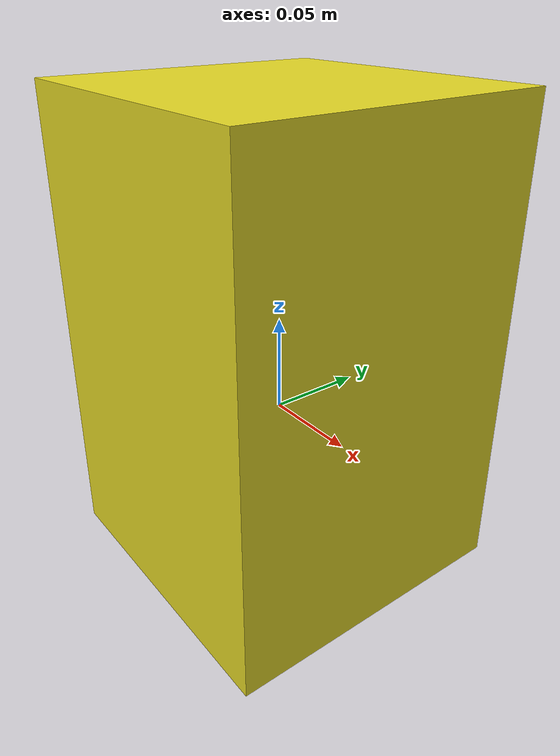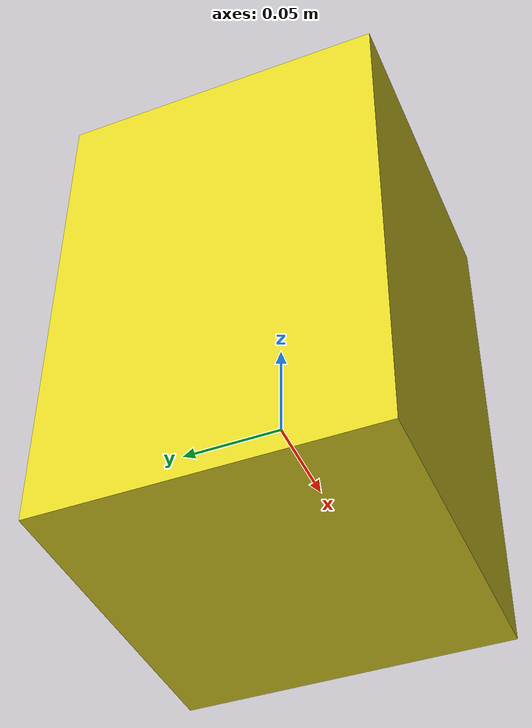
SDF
<?xml version='1.0'?>
<sdf version="1.4">
<model name="rock">
  <pose>0 0 0.04 0 0 0</pose>
  <static>false</static>
    <link name="link">
      <inertial>
        <mass>0.1</mass>
        <inertia> <!-- inertias are tricky to compute -->
          <!-- http://gazebosim.org/tutorials?tut=inertia&cat=build_robot -->
          <ixx>0.083</ixx>       <!-- for a box: ixx = 0.083 * mass * (y*y + z*z) -->
          <ixy>0.0</ixy>         <!-- for a box: ixy = 0 -->
          <ixz>0.0</ixz>         <!-- for a box: ixz = 0 -->
          <iyy>0.083</iyy>       <!-- for a box: iyy = 0.083 * mass * (x*x + z*z) -->
          <iyz>0.0</iyz>         <!-- for a box: iyz = 0 -->
          <izz>0.083</izz>       <!-- for a box: izz = 0.083 * mass * (x*x + y*y) -->
        </inertia>
      </inertial>
      <collision name="collision">
        <geometry>
          <box>
            <size>0.16 0.16 0.25</size>
          </box>
        </geometry>
      </collision>
      <visual name="visual">
        <geometry>
          <box>
            <size>0.16 0.16 0.25</size>
          </box>
        </geometry>
        <material>
          <script>
            <uri>file://media/materials/scripts/gazebo.material</uri>
            <name>Gazebo/Yellow</name>
          </script>
        </material>
      </visual>
    </link>
  </model>
</sdf>
